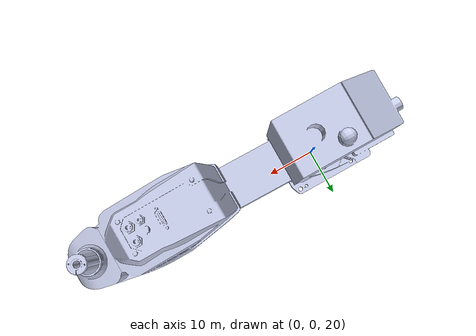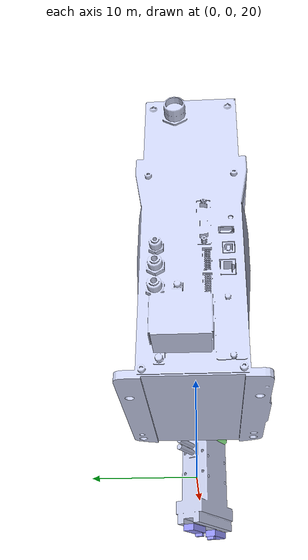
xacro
<?xml version="1.0" encoding="utf-8"?>
<robot name="epson_t3" xmlns:xacro="http://www.ros.org/wiki/xacro">
  <xacro:arg name="gripper_type" default="taiyo_sd_2005"/>
	<xacro:property name="gripper_type" value="$(arg gripper_type)" />
	<xacro:property name="scale_value" value="100.0"/>
  <xacro:property name="scale_value1" value="0.2"/>
  <link name="world"/>

  <joint name="joint_w" type="fixed">
    <parent link="world"/>
    <child link="base_link"/>
    <origin rpy="0.0 0.0 0.0" xyz="-10 0 26"/>
  </joint>

  <link name="base_link">
    <visual>
      <origin xyz="0 0 0" rpy="0 0 0" />
      <geometry>
        <mesh filename="package://epson_t3_description/meshes/base_link.STL" scale="${scale_value} ${scale_value} ${scale_value}"/>
      </geometry>
      <material name="">
        <color rgba="0.792156862745098 0.819607843137255 0.933333333333333 1" />
      </material>
    </visual>
    <collision>
      <origin xyz="0 0 0" rpy="0 0 0" />
      <geometry>
        <mesh filename="package://epson_t3_description/meshes/base_link.STL" scale="${scale_value} ${scale_value} ${scale_value}"/>
      </geometry>
    </collision>
  </link>

  <link name="link_1">
    <visual>
      <origin xyz="0 0 0" rpy="0 0 0" />
      <geometry>
        <mesh filename="package://epson_t3_description/meshes/link_1.STL" scale="${scale_value} ${scale_value} ${scale_value}"/>
      </geometry>
      <material name="">
        <color rgba="0.792156862745098 0.819607843137255 0.933333333333333 1" />
      </material>
    </visual>
    <collision>
      <origin xyz="0 0 0" rpy="0 0 0" />
      <geometry>
        <mesh filename="package://epson_t3_description/meshes/link_1.STL" scale="${scale_value} ${scale_value} ${scale_value}"/>
      </geometry>
    </collision>
  </link>

  <link name="link_2">
    <visual>
      <origin xyz="0 0 0" rpy="0 0 0" />
      <geometry>
        <mesh filename="package://epson_t3_description/meshes/link_2.STL" scale="${scale_value} ${scale_value} ${scale_value}"/>
      </geometry>
      <material
        name="">
        <color rgba="0.792156862745098 0.819607843137255 0.933333333333333 1" />
      </material>
    </visual>
    <collision>
      <origin xyz="0 0 0" rpy="0 0 0" />
      <geometry>
        <mesh filename="package://epson_t3_description/meshes/link_2.STL" scale="${scale_value} ${scale_value} ${scale_value}"/>
      </geometry>
    </collision>
  </link>

  <link name="link_2_virtual">
  </link>

  <link name="link_3">
    <visual>
      <origin xyz="0 ${scale_value*0.32} 0" rpy="0 0 0" /> <!--Changed the Y-axis-->
      <geometry>
        <mesh filename="package://epson_t3_description/meshes/link_3.STL" scale="${scale_value} ${scale_value} ${scale_value}"/>
      </geometry>
      <material
        name="">
        <color  rgba="0.792156862745098 0.819607843137255 0.933333333333333 1" />
      </material>
    </visual>
    <collision>
      <origin xyz="0 ${scale_value*0.32} 0" rpy="0 0 0" /> <!--Changed the Y-axis-->
      <geometry>
        <mesh filename="package://epson_t3_description/meshes/link_3.STL" scale="${scale_value} ${scale_value} ${scale_value}"/>
      </geometry>
    </collision>
  </link>

  <joint name="joint_1" type="revolute">
    <origin xyz="${scale_value*0.14498} ${scale_value*-0.0016851} ${scale_value*0.1913}" rpy="1.5708 0 -0.011622" />
    <parent link="base_link" />
    <child link="link_1" />
    <axis xyz="0 1 0" />
    <limit lower="-2.0492" upper="2.0492" effort="1000" velocity="1" />
  </joint>

  <joint name="joint_2" type="revolute">
    <origin xyz="${scale_value*0.225} ${scale_value*0.0128} ${scale_value*-0.0016852}" rpy="0 0.023733 0" />
    <parent link="link_1" />
    <child link="link_2" />
    <axis xyz="0 1 0" />
    <limit lower="-2.4609" upper="2.4609" effort="0" velocity="1" />
  </joint>

  <joint name="joint_3" type="prismatic">
    <origin xyz="${scale_value*0.175} 0 0" rpy="0 1.0337 0" />
    <parent link="link_2" />
    <child link="link_2_virtual" />
    <axis xyz="0 1 0" />
    <limit lower="${scale_value*-0.11949}" upper="${scale_value*-0.042}" effort="10" velocity="1" /> <!--changed the limits-->
  </joint>

  <joint name="joint_4" type="revolute">
    <origin xyz="0 0 0" rpy="0 0 0" /> <!--Increased Y-axis by 0.22-->
    <parent link="link_2_virtual" />
    <child link="link_3" />
    <axis xyz="0 1 0"/>
    <limit lower="-3.14" upper="3.14" effort="0" velocity="0" />
  </joint>

	<xacro:if value="${gripper_type != 'none'}">
   	<xacro:include filename="$(find epson_t3_description)/urdf/${gripper_type}.urdf.xacro" />
  </xacro:if>

</robot>

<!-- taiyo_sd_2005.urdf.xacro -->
<robot name="epson_t3" xmlns:xacro="http://www.ros.org/wiki/xacro">

	<link name="gripper_base">
		<visual>
			<origin rpy="1.5708 0 1.5708" xyz="${scale_value*-0.025} ${scale_value*-0.052} ${scale_value1*0.0213675}"/>
			<geometry>
				<mesh filename="package://epson_t3_description/meshes/gripper_base.STL" scale="${scale_value1} ${scale_value1} ${scale_value1}"/>
			</geometry>
			<material name="">
        		<color rgba="0.792156862745098 0.819607843137255 0.933333333333333 1" />
      		</material>
		</visual>
		<collision>
			<origin rpy="1.5708 0 1.5708" xyz="${scale_value*-0.025} ${scale_value*-0.052} ${scale_value1*0.0213675}"/>
			<geometry>
				<mesh filename="package://epson_t3_description/meshes/gripper_base.STL" scale="${scale_value1} ${scale_value1} ${scale_value1}"/>
			</geometry>
		</collision>
		<inertial>
			<mass value="1"/>
			<origin rpy="0.000000 0.000000 0.000000" xyz="0.000000 0.000000 0.000000"/>
			<inertia ixx="1" ixy="0" ixz="0" iyy="1" iyz="0" izz="1"/>
		</inertial>
	</link>

	<link name="robot_gripper_interface">
		<visual>
			<origin rpy="0 0 0" xyz="0 0 ${scale_value*0.00451}"/>
			<geometry>
				<cylinder length="${scale_value*0.00902}" radius="${scale_value*0.04}"/>
			</geometry>
			<material name="material_color_robot_gripper_interface">
				<color rgba="0.6 1 0.6 1"/>
			</material>
		</visual>
		<collision>
			<origin rpy="0 0 0" xyz="0 0 ${scale_value1*0.00451}"/>
			<geometry>
				<cylinder length="${scale_value*0.00902}" radius="${scale_value*0.04}"/>
			</geometry>
		</collision>
	</link>

	<joint name="robot_to_gripper" type="fixed">
		<parent link="link_3"/>
		<child link="robot_gripper_interface"/>
		<origin rpy="1.5708 3.14159 0" xyz="0 0 0"/> <!--DECREASED Y-Axis from orign-->
	</joint>

	<joint name="joint_gripper_base" type="fixed">
		<parent link="robot_gripper_interface"/>
		<child link="gripper_base"/>
		<origin rpy="0.000000 0 0.000000" xyz="0.000000 0.000000 ${scale_value*0.00902}"/>
	</joint>

	<link name="left_finger">
		<visual>
		<origin rpy="0 0 0" xyz="0 0 0"/>
			<geometry>
				<box size="${scale_value*0.03573} ${scale_value*0.01813} ${scale_value*0.0098}"/>
			</geometry>
			<material name="material_color_left_claw">
				<color rgba="0.6 0.6 1 1"/>
			</material>
		</visual>
		<collision>
			<origin rpy="0 0 0" xyz="0 0 0"/>
			<geometry>
				<box size="${scale_value*0.03573} ${scale_value*0.01813} ${scale_value*0.0098}"/>
			</geometry>
		</collision>
	</link>

	<joint name="joint_gripper" type="prismatic">
		<parent link="gripper_base"/>
		<child link="left_finger"/>
		<origin rpy="0.000000 0.000000 1.57079632679" xyz="0 ${scale_value*0.03289} ${scale_value*0.15}"/>
		<axis xyz="-1.000000 0.000000 -0.000000"/>
		<limit effort="${scale_value * 200000}" lower="0.000000" upper="${scale_value * 0.015}" velocity="${scale_value * 18.000000}"/>
		<dynamics damping="0" friction="0"/>
	</joint>

	<link name="left_finger_tip">
		<visual>
		<origin rpy="0 0 0" xyz="0 0 0"/>
			<geometry>
				<box size="${scale_value*0.00610} ${scale_value*0.01260} ${scale_value*0.0055}"/>
			</geometry>
			<material name="material_color_left_finger_tip">
				<color rgba="0.6 0.6 1 1"/>
			</material>
		</visual>
		<collision>
			<origin rpy="0 0 0" xyz="0 0 0"/>
			<geometry>
				<box size="${scale_value*0.00610} ${scale_value*0.01260} ${scale_value*0.0055}"/>
			</geometry>
		</collision>
	</link>

	<joint name="gripper_left_graspping_tip" type="fixed">
		<parent link="left_finger"/>
		<child link="left_finger_tip"/>
		<origin rpy="0.000000 0.000000 0" xyz="-${scale_value*0.0148} 0 ${scale_value*0.0069}"/>
	</joint>

	<link name="right_finger">
		<collision>
			<origin rpy="0 0 0" xyz="0 0 0"/>
			<geometry>
				<box size="${scale_value*0.03573} ${scale_value*0.01813} ${scale_value*0.0098}"/>
			</geometry>
		</collision>
		<visual>
			<origin rpy="0 0 0" xyz="0 0 0"/>
			<geometry>
				<box size="${scale_value*0.03573} ${scale_value*0.01813} ${scale_value*0.0098}"/>
			</geometry>
			<material name="material_color_right_claw">
				<color rgba="0.6 0.6 1 1"/>
			</material>
		</visual>
	</link>

	<joint name="joint_gripper_mimic" type="prismatic">
		<parent link="gripper_base"/>
		<child link="right_finger"/>
		<mimic joint="joint_gripper" multiplier="-1.000000" offset="0.000000"/>
		<origin rpy="0.000000 0.000000 1.57079632679" xyz="0 -${scale_value*0.03289} ${scale_value*0.15}"/>
		<axis xyz="-1.000000 0.000000 -0.000000"/>
		<limit effort="${scale_value * 200000}" lower="-${scale_value * 0.015}" upper="0.000000" velocity="${scale_value * 18.00000}"/>
		<dynamics damping="0" friction="0"/>
	</joint>

	<link name="right_finger_tip">
		<visual>
		<origin rpy="0 0 0" xyz="0 0 0"/>
			<geometry>
				<box size="${scale_value*0.00610} ${scale_value*0.01260} ${scale_value*0.0055}"/>
			</geometry>
			<material name="material_color_right_finger_tip">
				<color rgba="0.6 0.6 1 1"/>
			</material>
		</visual>
		<collision>
			<origin rpy="0 0 0" xyz="0 0 0"/>
			<geometry>
				<box size="${scale_value*0.00610} ${scale_value*0.01260} ${scale_value*0.0055}"/>
			</geometry>
		</collision>
	</link>

	<joint name="gripper_right_graspping_tip" type="fixed">
		<parent link="right_finger"/>
		<child link="right_finger_tip"/>
		<origin rpy="0.000000 0.000000 0" xyz="${scale_value*0.0148} 0 ${scale_value*0.0069}"/>
	</joint>

	<link name="gripper_tip"/>
	<joint name="joint_tip" type="fixed">
		<parent link="gripper_base"/>
		<child link="gripper_tip"/>
		<origin rpy="0.000000 0.000000 0.000000" xyz="0 0 ${scale_value*0.16}"/>
	</joint>

</robot>
